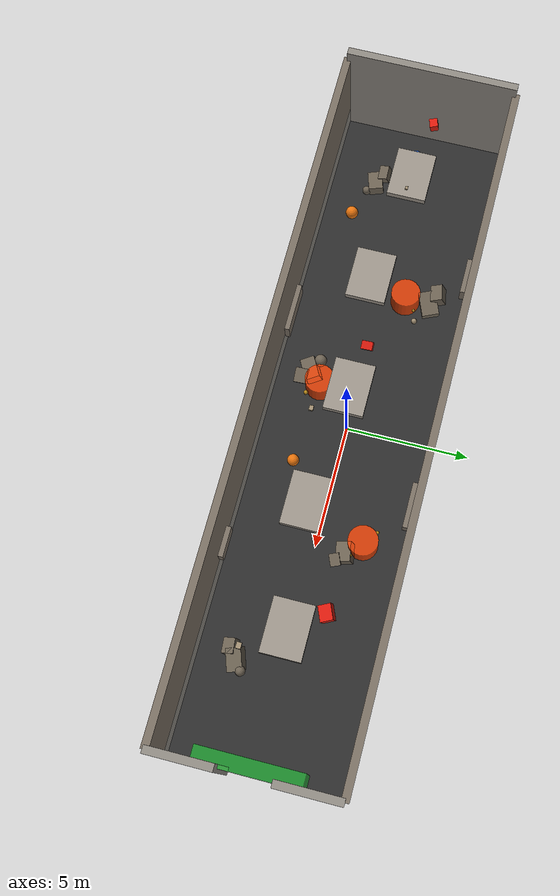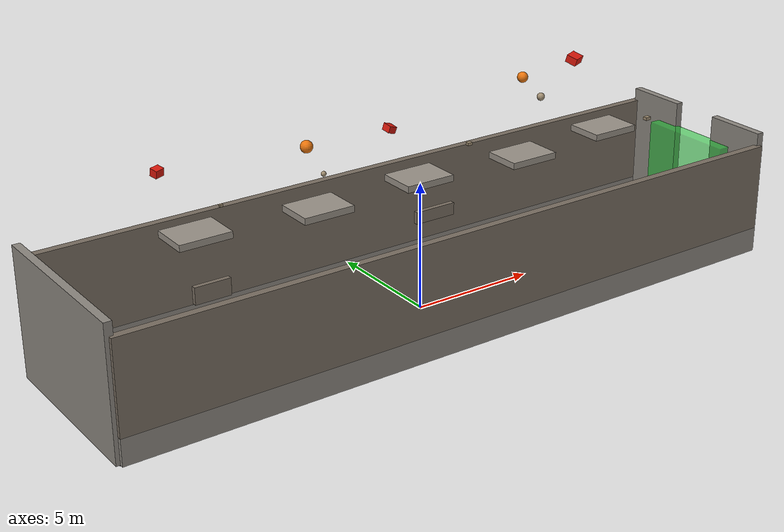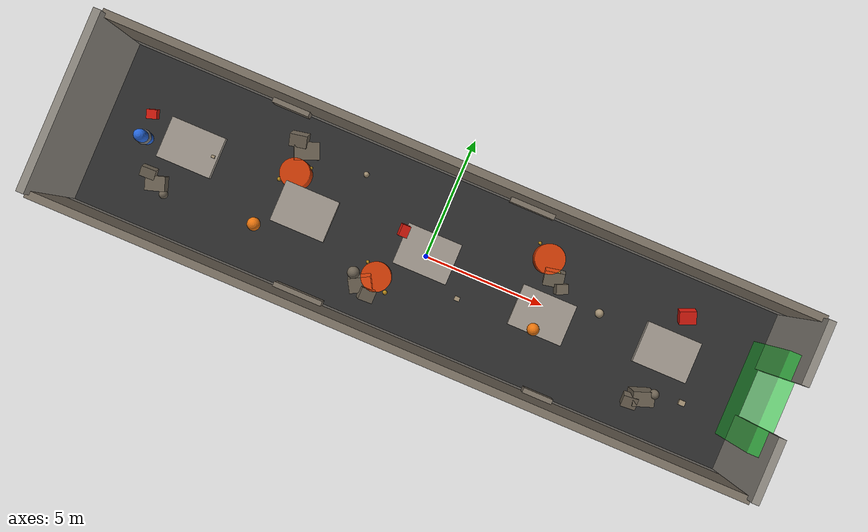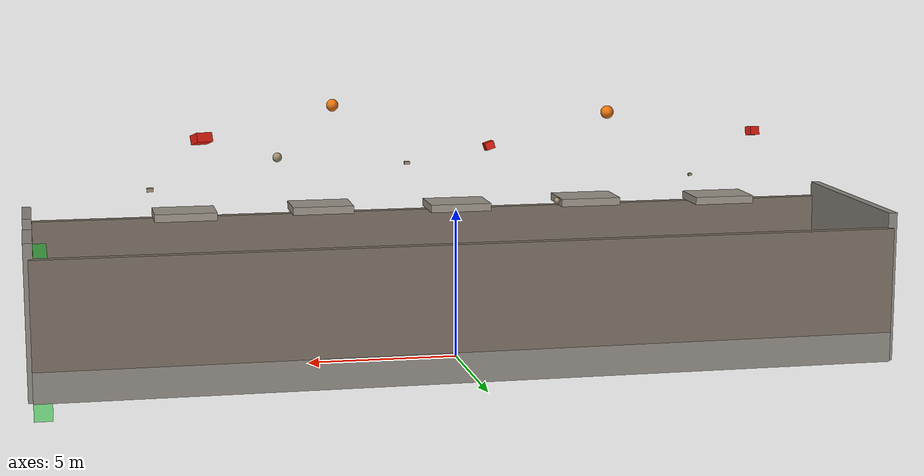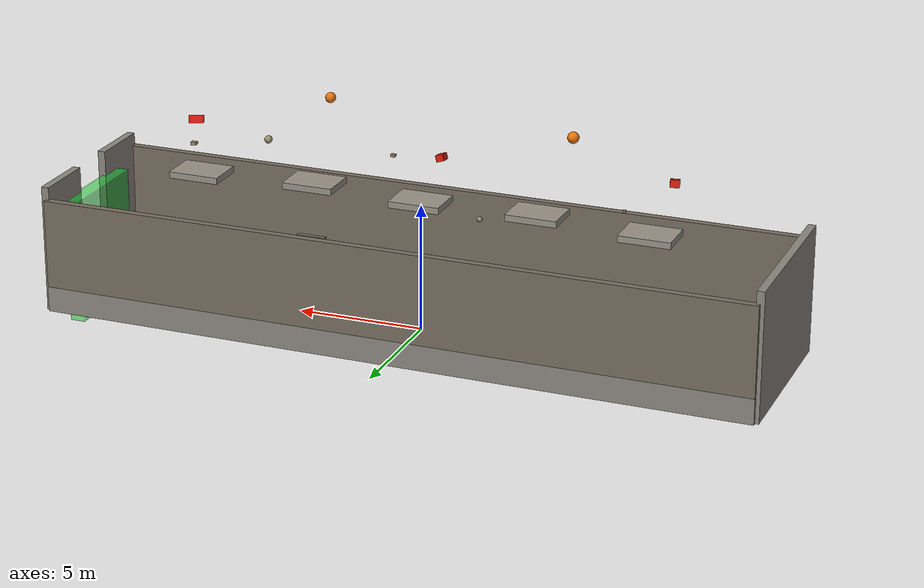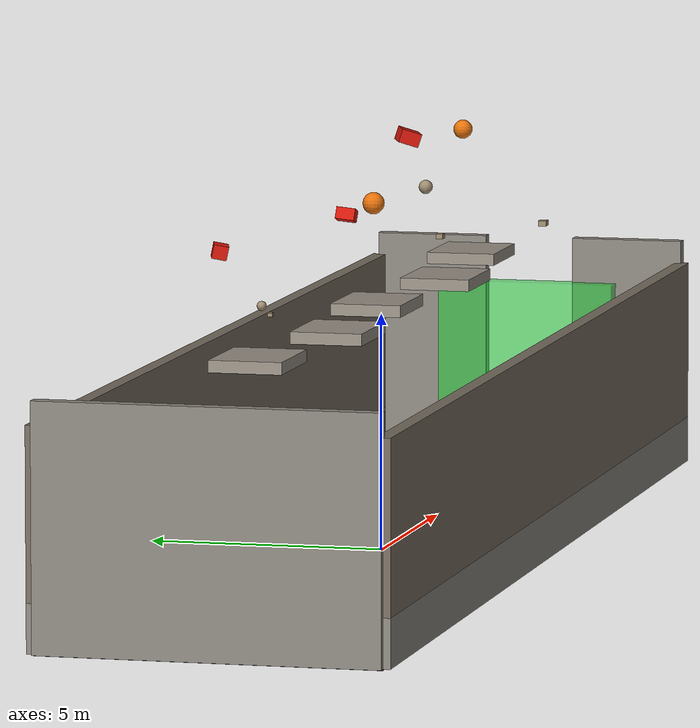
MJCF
<mujoco model="disaster-corridor-v2">

  <compiler autolimits="true" angle="radian"/>

  <option gravity="0 0 -9.81" timestep="0.002" integrator="implicitfast"/>

  <default>
    <geom condim="3" friction="0.9 0.005 0.001" contype="1" conaffinity="1"/>
  </default>

  <!-- ================================================================
       ASSETS
       ================================================================ -->
  <asset>
    <!-- Floor: dark checker texture -->
    <texture name="floor_tex" type="2d" builtin="checker"
             rgb1="0.12 0.12 0.12" rgb2="0.22 0.22 0.22"
             width="512" height="512"/>
    <material name="floor_mat" texture="floor_tex" texrepeat="28 7" reflectance="0.04"/>

    <!-- Structural concrete -->
    <material name="concrete_mat"     rgba="0.55 0.53 0.50 1.0"/>
    <material name="concrete_cracked" rgba="0.47 0.43 0.38 1.0"/>

    <!-- Ceiling tile materials -->
    <material name="ceiling_mat"    rgba="0.60 0.57 0.53 1.0"/>
    <material name="ceiling_broken" rgba="0.50 0.46 0.40 1.0"/>

    <!-- Debris materials -->
    <material name="debris_heavy" rgba="0.42 0.38 0.32 1.0"/>
    <material name="debris_light" rgba="0.62 0.55 0.44 1.0"/>
    <material name="rebar_mat"    rgba="0.66 0.37 0.16 1.0"/>

    <!-- Hazard materials -->
    <material name="fire_mat"  rgba="0.95 0.28 0.04 0.85"/>
    <material name="ember_mat" rgba="0.98 0.72 0.10 0.70"/>

    <!-- Agent and goal -->
    <material name="goal_mat"  rgba="0.10 0.85 0.20 0.55"/>
    <material name="agent_mat" rgba="0.15 0.40 0.85 1.0"/>

    <!-- Danger debris tones -->
    <material name="danger_red"    rgba="0.85 0.10 0.05 1.0"/>
    <material name="danger_orange" rgba="0.90 0.45 0.05 1.0"/>
  </asset>

  <equality>
    <!-- Ceiling tile welds: indices 0-4 -->
    <weld name="weld_ceil_0"  body1="ceil_anchor_0"  body2="ceil_fall_0"  active="true"/>
    <weld name="weld_ceil_1"  body1="ceil_anchor_1"  body2="ceil_fall_1"  active="true"/>
    <weld name="weld_ceil_2"  body1="ceil_anchor_2"  body2="ceil_fall_2"  active="true"/>
    <weld name="weld_ceil_3"  body1="ceil_anchor_3"  body2="ceil_fall_3"  active="true"/>
    <weld name="weld_ceil_4"  body1="ceil_anchor_4"  body2="ceil_fall_4"  active="true"/>
    <!-- Wall chunk welds: indices 5-8 -->
    <weld name="weld_wall_L0" body1="wall_anchor_L0" body2="wall_chunk_L0" active="true"/>
    <weld name="weld_wall_L1" body1="wall_anchor_L1" body2="wall_chunk_L1" active="true"/>
    <weld name="weld_wall_R0" body1="wall_anchor_R0" body2="wall_chunk_R0" active="true"/>
    <weld name="weld_wall_R1" body1="wall_anchor_R1" body2="wall_chunk_R1" active="true"/>
  </equality>

  <!-- ================================================================
       WORLDBODY
       ================================================================ -->
  <worldbody>

    <!-- -------- LIGHTING -------- -->
    <!-- Overhead dim (power-outage atmosphere) -->
    <light name="main_overhead" directional="true" pos="0 0 8" dir="0 0 -1"
           diffuse="0.25 0.22 0.18" specular="0.04 0.04 0.04" ambient="0.05 0.04 0.03"/>

    <!-- Emergency red strip lights at x=-9, -3, 4, 10 -->
    <light name="emerg_0" directional="false" pos="-9 0 3.5"
           diffuse="0.70 0.08 0.06" specular="0 0 0" mode="fixed"/>
    <light name="emerg_1" directional="false" pos="-3 0 3.5"
           diffuse="0.70 0.08 0.06" specular="0 0 0" mode="fixed"/>
    <light name="emerg_2" directional="false" pos="4  0 3.5"
           diffuse="0.70 0.08 0.06" specular="0 0 0" mode="fixed"/>
    <light name="emerg_3" directional="false" pos="10 0 3.5"
           diffuse="0.70 0.08 0.06" specular="0 0 0" mode="fixed"/>

    <!-- Fire glow orange point lights -->
    <light name="fire_glow_0" directional="false" pos="-6  1.0 1.5"
           diffuse="0.90 0.45 0.05" specular="0 0 0" mode="fixed"/>
    <light name="fire_glow_1" directional="false" pos="4.5 1.8 1.5"
           diffuse="0.90 0.45 0.05" specular="0 0 0" mode="fixed"/>

    <!-- -------- FLOOR -------- -->
    <!-- 28m × 7m corridor plane, dark checker -->
    <geom name="floor" type="plane" size="14 3.5 0.1" pos="0 0 0"
          material="floor_mat" friction="0.9 0.005 0.001"/>

    <!-- -------- PERMANENT WALLS -------- -->

    <!-- Left wall base: y=-3.5, z 0→1.0m (half-height=0.5, center z=0.5) -->
    <geom name="wall_left_base"  type="box" size="14 0.15 0.5"
          pos="0 -3.5 0.5"  material="concrete_mat"/>
    <!-- Left wall upper: y=-3.5, z 1.0→4.5m (half-height=1.75, center z=2.75) -->
    <geom name="wall_left_upper" type="box" size="14 0.15 1.75"
          pos="0 -3.5 2.75" material="concrete_cracked"/>

    <!-- Right wall base: y=+3.5, z 0→1.0m -->
    <geom name="wall_right_base"  type="box" size="14 0.15 0.5"
          pos="0 3.5 0.5"   material="concrete_mat"/>
    <!-- Right wall upper: y=+3.5, z 1.0→4.5m -->
    <geom name="wall_right_upper" type="box" size="14 0.15 1.75"
          pos="0 3.5 2.75"  material="concrete_cracked"/>

    <!-- Back wall: x=-14, full cross-section seal (half=2.5m, center z=2.5) -->
    <geom name="wall_back"        type="box" size="0.15 3.5 2.5"
          pos="-14 0 2.5"   material="concrete_mat"/>

    <!-- Front wall left piece: x=+14, y -3.5→-1.0 (half-y=1.25, center y=-2.25) -->
    <geom name="wall_front_L"     type="box" size="0.15 1.25 2.5"
          pos="14 -2.25 2.5" material="concrete_mat"/>
    <!-- Front wall right piece: x=+14, y +1.0→+3.5 (half-y=1.25, center y=+2.25) -->
    <geom name="wall_front_R"     type="box" size="0.15 1.25 2.5"
          pos="14  2.25 2.5" material="concrete_mat"/>

    <!-- -------- CEILING TILE ANCHORS (fixed, no joint) -------- -->

    <body name="ceil_anchor_0" pos="-9   0 5.5">
      <geom type="box" size="0.01 0.01 0.01" mass="0.001"
            contype="0" conaffinity="0" rgba="0 0 0 0"/>
    </body>
    <body name="ceil_anchor_1" pos="-4.5 0 5.5">
      <geom type="box" size="0.01 0.01 0.01" mass="0.001"
            contype="0" conaffinity="0" rgba="0 0 0 0"/>
    </body>
    <body name="ceil_anchor_2" pos="0    0 5.5">
      <geom type="box" size="0.01 0.01 0.01" mass="0.001"
            contype="0" conaffinity="0" rgba="0 0 0 0"/>
    </body>
    <body name="ceil_anchor_3" pos="4.5  0 5.5">
      <geom type="box" size="0.01 0.01 0.01" mass="0.001"
            contype="0" conaffinity="0" rgba="0 0 0 0"/>
    </body>
    <body name="ceil_anchor_4" pos="9    0 5.5">
      <geom type="box" size="0.01 0.01 0.01" mass="0.001"
            contype="0" conaffinity="0" rgba="0 0 0 0"/>
    </body>

    <!-- -------- CEILING TILE FALLING BODIES -------- -->
    <!-- Slab: ~2m × 1.5m × 0.25m → half-extents 1.0 × 0.75 × 0.125 -->
    <!-- Initial pos: x same as anchor, y ±0.3 offset, z=5.2 -->

    <!-- Tile 0: x=-9, mass=220kg, 2 rebars -->
    <body name="ceil_fall_0" pos="-9 0.3 5.2">
      <freejoint name="ceil_fall_0_joint"/>
      <geom name="ceil_slab_0" type="box" size="1.0 0.75 0.125"
            mass="220" material="ceiling_mat"/>
      <geom name="rebar_0a" type="cylinder" size="0.04 0.30"
            pos="0.30  0.10 0" euler="0.20 1.5708 0.30"
            mass="4" material="rebar_mat"/>
      <geom name="rebar_0b" type="cylinder" size="0.04 0.35"
            pos="-0.40 -0.20 0" euler="-0.30 1.5708 0.50"
            mass="5" material="rebar_mat"/>
    </body>

    <!-- Tile 1: x=-4.5, mass=350kg, 1 rebar -->
    <body name="ceil_fall_1" pos="-4.5 -0.2 5.2">
      <freejoint name="ceil_fall_1_joint"/>
      <geom name="ceil_slab_1" type="box" size="1.0 0.75 0.125"
            mass="350" material="ceiling_mat"/>
      <geom name="rebar_1a" type="cylinder" size="0.04 0.45"
            pos="0.50 0.30 0" euler="0.40 1.5708 -0.30"
            mass="5" material="rebar_mat"/>
    </body>

    <!-- Tile 2: x=0, mass=180kg, no rebar -->
    <body name="ceil_fall_2" pos="0 0.1 5.2">
      <freejoint name="ceil_fall_2_joint"/>
      <geom name="ceil_slab_2" type="box" size="1.0 0.75 0.125"
            mass="180" material="ceiling_mat"/>
    </body>

    <!-- Tile 3: x=4.5, mass=390kg, 2 rebars -->
    <body name="ceil_fall_3" pos="4.5 -0.3 5.2">
      <freejoint name="ceil_fall_3_joint"/>
      <geom name="ceil_slab_3" type="box" size="1.0 0.75 0.125"
            mass="390" material="ceiling_mat"/>
      <geom name="rebar_3a" type="cylinder" size="0.04 0.30"
            pos="-0.30  0.20 0" euler="0.10 1.5708 0.60"
            mass="3" material="rebar_mat"/>
      <geom name="rebar_3b" type="cylinder" size="0.04 0.40"
            pos=" 0.40 -0.40 0" euler="0.50 1.5708 -0.20"
            mass="4" material="rebar_mat"/>
    </body>

    <!-- Tile 4: x=9, mass=310kg, no rebar -->
    <body name="ceil_fall_4" pos="9 0.2 5.2">
      <freejoint name="ceil_fall_4_joint"/>
      <geom name="ceil_slab_4" type="box" size="1.0 0.75 0.125"
            mass="310" material="ceiling_mat"/>
    </body>

    <!-- -------- WALL CHUNK ANCHORS (fixed to wall face, no joint) -------- -->

    <!-- Left wall anchors at y=-3.5 -->
    <body name="wall_anchor_L0" pos="-4.0 -3.5 1.2">
      <geom type="box" size="0.01 0.01 0.01" mass="0.001"
            contype="0" conaffinity="0" rgba="0 0 0 0"/>
    </body>
    <body name="wall_anchor_L1" pos="6.0 -3.5 1.5">
      <geom type="box" size="0.01 0.01 0.01" mass="0.001"
            contype="0" conaffinity="0" rgba="0 0 0 0"/>
    </body>

    <!-- Right wall anchors at y=+3.5 -->
    <body name="wall_anchor_R0" pos="-7.0 3.5 1.4">
      <geom type="box" size="0.01 0.01 0.01" mass="0.001"
            contype="0" conaffinity="0" rgba="0 0 0 0"/>
    </body>
    <body name="wall_anchor_R1" pos="3.0 3.5 2.0">
      <geom type="box" size="0.01 0.01 0.01" mass="0.001"
            contype="0" conaffinity="0" rgba="0 0 0 0"/>
    </body>

    <!-- -------- WALL CHUNK FALLING BODIES -------- -->
    <!-- Chunks protrude slightly from inner wall face (y≈±3.3) -->

    <!-- L0: x=-4.0, box 2.0×0.3×0.8 → half-extents 1.0×0.15×0.4, mass=400 -->
    <body name="wall_chunk_L0" pos="-4.0 -3.3 1.2">
      <freejoint name="wall_chunk_L0_joint"/>
      <geom name="wchunk_L0" type="box" size="1.0 0.15 0.4"
            mass="400" material="concrete_cracked"/>
    </body>

    <!-- L1: x=6.0, box 1.2×0.3×0.6 → half-extents 0.6×0.15×0.3, mass=250 -->
    <body name="wall_chunk_L1" pos="6.0 -3.3 1.5">
      <freejoint name="wall_chunk_L1_joint"/>
      <geom name="wchunk_L1" type="box" size="0.6 0.15 0.3"
            mass="250" material="concrete_cracked"/>
    </body>

    <!-- R0: x=-7.0, box 1.5×0.3×0.7 → half-extents 0.75×0.15×0.35, mass=300 -->
    <body name="wall_chunk_R0" pos="-7.0 3.3 1.4">
      <freejoint name="wall_chunk_R0_joint"/>
      <geom name="wchunk_R0" type="box" size="0.75 0.15 0.35"
            mass="300" material="concrete_cracked"/>
    </body>

    <!-- R1: x=3.0, box 1.8×0.3×0.5 → half-extents 0.9×0.15×0.25, mass=350 -->
    <body name="wall_chunk_R1" pos="3.0 3.3 2.0">
      <freejoint name="wall_chunk_R1_joint"/>
      <geom name="wchunk_R1" type="box" size="0.9 0.15 0.25"
            mass="350" material="concrete_cracked"/>
    </body>

    <!-- -------- PRIMARY FALLING DEBRIS (freejoint, no weld) -------- -->
    <!-- 5 heavy bodies 18-30kg, spawn height 7-8.5m, mixed box/sphere -->

    <body name="debris_primary_0" pos="-10 0.8 7.5">
      <freejoint name="debris_primary_0_joint"/>
      <geom name="dprim_0" type="box" size="0.175 0.150 0.140"
            mass="22" euler="0.20 0.00 0.30" material="danger_red"/>
    </body>

    <body name="debris_primary_1" pos="-5.5 -1.2 8.0">
      <freejoint name="debris_primary_1_joint"/>
      <geom name="dprim_1" type="sphere" size="0.22"
            mass="28" material="danger_orange"/>
    </body>

    <body name="debris_primary_2" pos="-1.0 0.5 7.2">
      <freejoint name="debris_primary_2_joint"/>
      <geom name="dprim_2" type="box" size="0.150 0.200 0.125"
            mass="18" euler="0.10 0.30 0.00" material="danger_red"/>
    </body>

    <body name="debris_primary_3" pos="4.0 -0.8 8.5">
      <freejoint name="debris_primary_3_joint"/>
      <geom name="dprim_3" type="sphere" size="0.20"
            mass="25" material="danger_orange"/>
    </body>

    <body name="debris_primary_4" pos="8.5 1.5 7.8">
      <freejoint name="debris_primary_4_joint"/>
      <geom name="dprim_4" type="box" size="0.275 0.225 0.150"
            mass="30" euler="0.30 0.10 0.40" material="danger_red"/>
    </body>

    <!-- -------- SCATTER SHRAPNEL (freejoint, no weld) -------- -->
    <!-- 5 light bodies 2-5kg, spawn height 5.5-7m, x/y distinct from primary -->

    <body name="debris_scatter_0" pos="-8.0 0.3 6.0">
      <freejoint name="debris_scatter_0_joint"/>
      <geom name="dscat_0" type="box" size="0.060 0.050 0.040"
            mass="3.0" material="debris_light"/>
    </body>

    <body name="debris_scatter_1" pos="-3.0 1.8 5.5">
      <freejoint name="debris_scatter_1_joint"/>
      <geom name="dscat_1" type="sphere" size="0.10"
            mass="2.0" material="debris_light"/>
    </body>

    <body name="debris_scatter_2" pos="1.5 -0.9 6.5">
      <freejoint name="debris_scatter_2_joint"/>
      <geom name="dscat_2" type="box" size="0.090 0.075 0.050"
            mass="5.0" material="debris_light"/>
    </body>

    <body name="debris_scatter_3" pos="6.0 0.5 7.0">
      <freejoint name="debris_scatter_3_joint"/>
      <geom name="dscat_3" type="sphere" size="0.15"
            mass="4.0" material="debris_light"/>
    </body>

    <body name="debris_scatter_4" pos="10.0 -1.2 5.8">
      <freejoint name="debris_scatter_4_joint"/>
      <geom name="dscat_4" type="box" size="0.110 0.090 0.060"
            mass="2.5" material="debris_light"/>
    </body>

    <!-- -------- STATIC RUBBLE PILES (fixed geoms, no joint) -------- -->
    <!-- Distributed to force navigation around them, exit gap at y≈0 clear -->

    <!-- Pile 0: near start, left side -->
    <geom name="rubble_0a" type="box"    size="0.40 0.30 0.25"
          pos="-11.0 -1.5 0.25" euler="0.10 0.00 0.30" material="debris_heavy"/>
    <geom name="rubble_0b" type="box"    size="0.30 0.20 0.20"
          pos="-11.4 -1.2 0.45" euler="0.30 0.10 0.00" material="debris_heavy"/>
    <geom name="rubble_0c" type="sphere" size="0.18"
          pos="-10.6 -1.8 0.18"                         material="debris_heavy"/>

    <!-- Pile 1: mid-left, right side of corridor -->
    <geom name="rubble_1a" type="box"    size="0.50 0.35 0.30"
          pos="-6.0 2.0 0.30" euler="0.00 0.20 0.40" material="debris_heavy"/>
    <geom name="rubble_1b" type="box"    size="0.35 0.25 0.25"
          pos="-6.4 2.3 0.55" euler="0.40 0.00 0.20" material="debris_heavy"/>

    <!-- Pile 2: center zone, left side — agent must go right or right-center -->
    <geom name="rubble_2a" type="box"    size="0.45 0.30 0.30"
          pos="-2.0 -2.0 0.30" euler="0.20 0.10 0.50" material="debris_heavy"/>
    <geom name="rubble_2b" type="sphere" size="0.25"
          pos="-2.4 -1.7 0.55"                         material="debris_heavy"/>
    <geom name="rubble_2c" type="box"    size="0.30 0.25 0.20"
          pos="-1.6 -2.3 0.50" euler="0.10 0.30 0.00" material="debris_heavy"/>

    <!-- Pile 3: forward-right zone -->
    <geom name="rubble_3a" type="box"    size="0.40 0.30 0.25"
          pos="5.0 1.2 0.25" euler="0.30 0.00 0.20" material="debris_heavy"/>
    <geom name="rubble_3b" type="box"    size="0.25 0.20 0.20"
          pos="5.4 0.9 0.45" euler="0.00 0.20 0.40" material="debris_heavy"/>

    <!-- Pile 4: near-exit, left-side — center exit lane stays clear -->
    <geom name="rubble_4a" type="box"    size="0.45 0.30 0.35"
          pos="10.0 -1.8 0.35" euler="0.10 0.20 0.30" material="debris_heavy"/>
    <geom name="rubble_4b" type="sphere" size="0.20"
          pos="10.4 -1.5 0.55"                         material="debris_heavy"/>
    <geom name="rubble_4c" type="box"    size="0.30 0.25 0.20"
          pos=" 9.6 -2.1 0.50" euler="0.40 0.00 0.10" material="debris_heavy"/>

    <!-- -------- FIRE HAZARD ZONES (no physics collision) -------- -->
    <!-- Positions specified exactly per prompt; bridge checks agent proximity -->

    <geom name="fire_zone_0" type="cylinder" size="0.6 0.5"
          pos="-6.0 1.0 0.5"  material="fire_mat" contype="0" conaffinity="0"/>
    <geom name="fire_zone_1" type="cylinder" size="0.6 0.5"
          pos="-1.5 -1.5 0.5" material="fire_mat" contype="0" conaffinity="0"/>
    <geom name="fire_zone_2" type="cylinder" size="0.6 0.5"
          pos="4.5 1.8 0.5"   material="fire_mat" contype="0" conaffinity="0"/>

    <!-- Embers near fire zone 0 (x≈-6, y≈1) -->
    <geom name="ember_0a" type="sphere" size="0.08" pos="-6.55  0.55 0.45"
          material="ember_mat" contype="0" conaffinity="0"/>
    <geom name="ember_0b" type="sphere" size="0.06" pos="-5.55  1.45 0.40"
          material="ember_mat" contype="0" conaffinity="0"/>

    <!-- Embers near fire zone 1 (x≈-1.5, y≈-1.5) -->
    <geom name="ember_1a" type="sphere" size="0.07" pos="-2.05 -1.10 0.40"
          material="ember_mat" contype="0" conaffinity="0"/>
    <geom name="ember_1b" type="sphere" size="0.09" pos="-0.95 -1.95 0.48"
          material="ember_mat" contype="0" conaffinity="0"/>
    <geom name="ember_1c" type="sphere" size="0.05" pos="-1.85 -2.05 0.30"
          material="ember_mat" contype="0" conaffinity="0"/>

    <!-- Embers near fire zone 2 (x≈4.5, y≈1.8) -->
    <geom name="ember_2a" type="sphere" size="0.07" pos="3.95  2.25 0.40"
          material="ember_mat" contype="0" conaffinity="0"/>
    <geom name="ember_2b" type="sphere" size="0.06" pos="5.10  1.45 0.48"
          material="ember_mat" contype="0" conaffinity="0"/>

    <!-- -------- AGENT -------- -->

    <body name="agent" pos="-12.0 0.0 0.9">
      <freejoint name="agent_root"/>
      <!-- Capsule: radius=0.25m, half-cylinder=0.55m → total half-extent 0.80m -->
      <geom name="agent_geom" type="capsule" size="0.25 0.55"
            mass="75" material="agent_mat" friction="0.9 0.005 0.001"/>
      <site name="agent_touch_site" type="sphere" size="0.30" pos="0 0 0"/>
    </body>

    <!-- -------- GOAL ZONE -------- -->

    <geom name="goal_zone" type="box" size="0.3 2.0 2.5"
          pos="13.7 0.0 1.5" material="goal_mat"
          contype="0" conaffinity="0"/>

  </worldbody>

  <!-- ================================================================
       ACTUATORS
       ================================================================ -->
  <actuator>
    <velocity name="move_x" joint="agent_root" gear="1 0 0 0 0 0" kv="4000"/>
    <velocity name="move_y" joint="agent_root" gear="0 1 0 0 0 0" kv="4000"/>
    <velocity name="turn_z" joint="agent_root" gear="0 0 0 0 0 1" kv="800"/>
  </actuator>

  <sensor>

    <!-- Agent state -->
    <framepos    name="agent_pos"     objtype="body" objname="agent"/>
    <framelinvel name="agent_vel"     objtype="body" objname="agent"/>
    <framexaxis  name="agent_facing"  objtype="body" objname="agent"/>
    <touch       name="contact_agent" site="agent_touch_site"/>

    <!-- Primary debris positions (obs [12:27]) -->
    <framepos name="debris_p0_pos" objtype="body" objname="debris_primary_0"/>
    <framepos name="debris_p1_pos" objtype="body" objname="debris_primary_1"/>
    <framepos name="debris_p2_pos" objtype="body" objname="debris_primary_2"/>
    <framepos name="debris_p3_pos" objtype="body" objname="debris_primary_3"/>
    <framepos name="debris_p4_pos" objtype="body" objname="debris_primary_4"/>

    <!-- Primary debris velocities: bridge extracts vz [27:32], vx [52:57], vy [57:62] -->
    <framelinvel name="debris_p0_vel" objtype="body" objname="debris_primary_0"/>
    <framelinvel name="debris_p1_vel" objtype="body" objname="debris_primary_1"/>
    <framelinvel name="debris_p2_vel" objtype="body" objname="debris_primary_2"/>
    <framelinvel name="debris_p3_vel" objtype="body" objname="debris_primary_3"/>
    <framelinvel name="debris_p4_vel" objtype="body" objname="debris_primary_4"/>

    <!-- Scatter debris positions (obs [32:47]) -->
    <framepos name="debris_s0_pos" objtype="body" objname="debris_scatter_0"/>
    <framepos name="debris_s1_pos" objtype="body" objname="debris_scatter_1"/>
    <framepos name="debris_s2_pos" objtype="body" objname="debris_scatter_2"/>
    <framepos name="debris_s3_pos" objtype="body" objname="debris_scatter_3"/>
    <framepos name="debris_s4_pos" objtype="body" objname="debris_scatter_4"/>

    <!-- Scatter debris velocities: bridge extracts vz for obs [47:52] -->
    <framelinvel name="debris_s0_vel" objtype="body" objname="debris_scatter_0"/>
    <framelinvel name="debris_s1_vel" objtype="body" objname="debris_scatter_1"/>
    <framelinvel name="debris_s2_vel" objtype="body" objname="debris_scatter_2"/>
    <framelinvel name="debris_s3_vel" objtype="body" objname="debris_scatter_3"/>
    <framelinvel name="debris_s4_vel" objtype="body" objname="debris_scatter_4"/>

    <!-- Ceiling tile positions: bridge derives broken flags (obs [52:57]) -->
    <framepos name="ceil_0pos" objtype="body" objname="ceil_fall_0"/>
    <framepos name="ceil_1pos" objtype="body" objname="ceil_fall_1"/>
    <framepos name="ceil_2pos" objtype="body" objname="ceil_fall_2"/>
    <framepos name="ceil_3pos" objtype="body" objname="ceil_fall_3"/>
    <framepos name="ceil_4pos" objtype="body" objname="ceil_fall_4"/>

    <!-- Wall chunk positions: used by bridge for collapse state tracking -->
    <framepos name="wall_L0_pos" objtype="body" objname="wall_chunk_L0"/>
    <framepos name="wall_L1_pos" objtype="body" objname="wall_chunk_L1"/>
    <framepos name="wall_R0_pos" objtype="body" objname="wall_chunk_R0"/>
    <framepos name="wall_R1_pos" objtype="body" objname="wall_chunk_R1"/>

  </sensor>

</mujoco>
